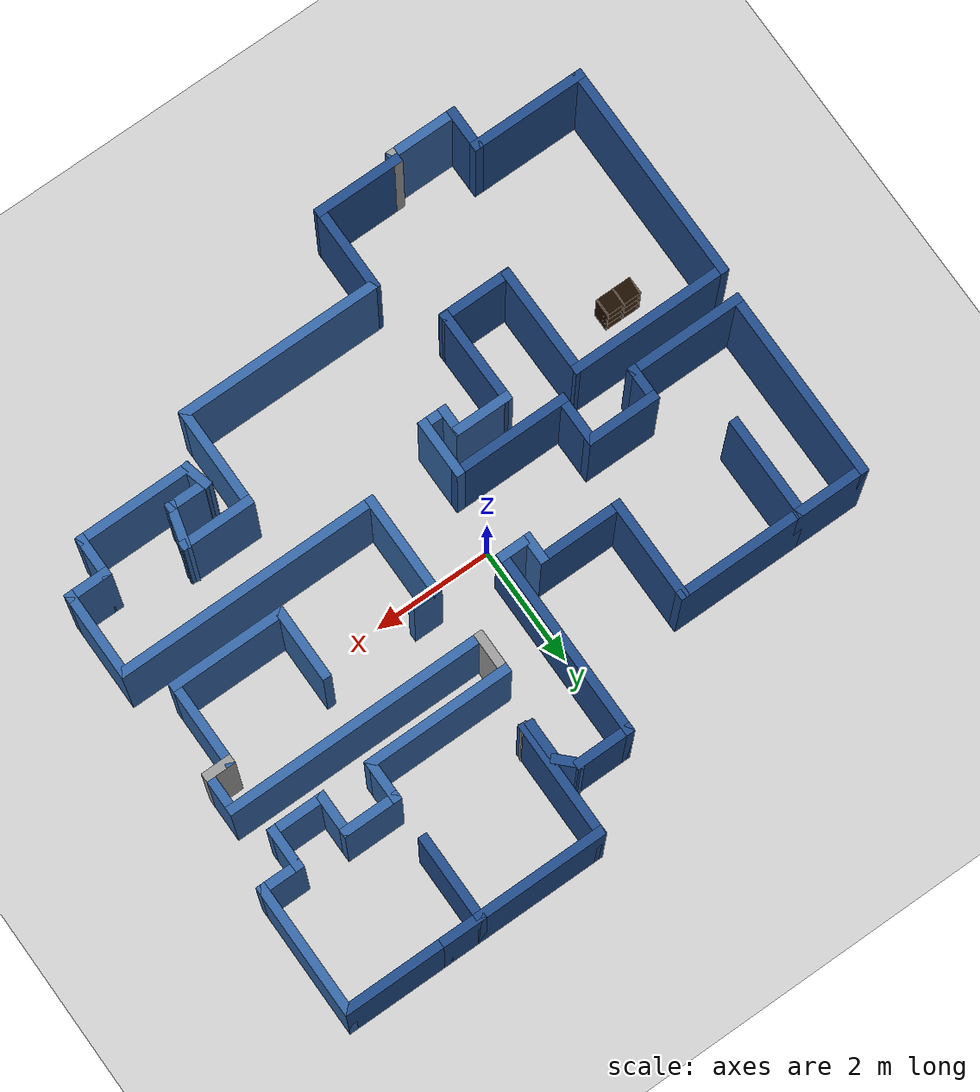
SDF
<sdf version="1.6">
 <world name="default">
  <model name="ground_plane">
   <static>1</static>
   <link name="link">
    <collision name="collision">
     <geometry><plane><normal>0 0 1</normal><size>100 100</size></plane></geometry>
     <surface><friction><ode><mu>100</mu><mu2>50</mu2></ode></friction></surface>
    </collision>
    <visual name="visual">
     <cast_shadows>0</cast_shadows>
     <geometry><plane><normal>0 0 1</normal><size>100 100</size></plane></geometry>
     <material>
      <script><uri>file://media/materials/scripts/gazebo.material</uri><name>Gazebo/Grey</name></script>
     </material>
    </visual>
   </link>
  </model>
  <model name="map_5">
   <pose>0.37936 -0.31798 0 0 -0 0</pose>
   <link name="Wall_0">
    <collision name="Wall_0_Collision">
     <geometry><box><size>1.5 0.15 2.5</size></box></geometry>
     <pose>0 0 1.25 0 -0 0</pose>
    </collision>
    <visual name="Wall_0_Visual">
     <pose>0 0 1.25 0 -0 0</pose>
     <geometry><box><size>1.5 0.15 2.5</size></box></geometry>
     <material>
      <script><uri>file://media/materials/scripts/gazebo.material</uri><name>Gazebo/Grey</name></script>
      <ambient>0.12549 0.290196 0.529412 1</ambient>
     </material>
     <meta><layer>0</layer></meta>
    </visual>
    <pose>-1.72204 -4.86332 0 0 -0 3.14159</pose>
   </link>
   <link name="Wall_1">
    <collision name="Wall_1_Collision">
     <geometry><box><size>0.25 0.15 2.5</size></box></geometry>
     <pose>0 0 1.25 0 -0 0</pose>
    </collision>
    <visual name="Wall_1_Visual">
     <pose>0 0 1.25 0 -0 0</pose>
     <geometry><box><size>0.25 0.15 2.5</size></box></geometry>
     <material>
      <script><uri>file://media/materials/scripts/gazebo.material</uri><name>Gazebo/Grey</name></script>
      <ambient>1 1 1 1</ambient>
     </material>
     <meta><layer>0</layer></meta>
    </visual>
    <pose>-2.39704 -4.91331 0 0 -0 -1.5708</pose>
   </link>
   <link name="Wall_10">
    <collision name="Wall_10_Collision">
     <geometry><box><size>1 0.15 2.5</size></box></geometry>
     <pose>0 0 1.25 0 -0 0</pose>
    </collision>
    <visual name="Wall_10_Visual">
     <pose>0 0 1.25 0 -0 0</pose>
     <geometry><box><size>1 0.15 2.5</size></box></geometry>
     <material>
      <script><uri>file://media/materials/scripts/gazebo.material</uri><name>Gazebo/Grey</name></script>
      <ambient>0.203922 0.396078 0.643137 1</ambient>
     </material>
     <meta><layer>0</layer></meta>
    </visual>
    <pose>-1.22204 -1.01331 0 0 -0 0</pose>
   </link>
   <link name="Wall_11">
    <collision name="Wall_11_Collision">
     <geometry><box><size>0.5 0.15 2.5</size></box></geometry>
     <pose>0 0 1.25 0 -0 0</pose>
    </collision>
    <visual name="Wall_11_Visual">
     <pose>0 0 1.25 0 -0 0</pose>
     <geometry><box><size>0.5 0.15 2.5</size></box></geometry>
     <material>
      <script><uri>file://media/materials/scripts/gazebo.material</uri><name>Gazebo/Grey</name></script>
      <ambient>0.203922 0.396078 0.643137 1</ambient>
     </material>
     <meta><layer>0</layer></meta>
    </visual>
    <pose>-0.79704 -1.18832 0 0 -0 -1.5708</pose>
   </link>
   <link name="Wall_12">
    <collision name="Wall_12_Collision">
     <geometry><box><size>0.5 0.15 2.5</size></box></geometry>
     <pose>0 0 1.25 0 -0 0</pose>
    </collision>
    <visual name="Wall_12_Visual">
     <pose>0 0 1.25 0 -0 0</pose>
     <geometry><box><size>0.5 0.15 2.5</size></box></geometry>
     <material>
      <script><uri>file://media/materials/scripts/gazebo.material</uri><name>Gazebo/Grey</name></script>
      <ambient>0.203922 0.396078 0.643137 1</ambient>
     </material>
     <meta><layer>0</layer></meta>
    </visual>
    <pose>-0.62204 -1.36332 0 0 -0 0</pose>
   </link>
   <link name="Wall_13">
    <collision name="Wall_13_Collision">
     <geometry><box><size>1 0.15 2.5</size></box></geometry>
     <pose>0 0 1.25 0 -0 0</pose>
    </collision>
    <visual name="Wall_13_Visual">
     <pose>0 0 1.25 0 -0 0</pose>
     <geometry><box><size>1 0.15 2.5</size></box></geometry>
     <material>
      <script><uri>file://media/materials/scripts/gazebo.material</uri><name>Gazebo/Grey</name></script>
      <ambient>0.203922 0.396078 0.643137 1</ambient>
     </material>
     <meta><layer>0</layer></meta>
    </visual>
    <pose>-0.44704 -0.938315 0 0 -0 1.5708</pose>
   </link>
   <link name="Wall_14">
    <collision name="Wall_14_Collision">
     <geometry><box><size>2 0.15 2.5</size></box></geometry>
     <pose>0 0 1.25 0 -0 0</pose>
    </collision>
    <visual name="Wall_14_Visual">
     <pose>0 0 1.25 0 -0 0</pose>
     <geometry><box><size>2 0.15 2.5</size></box></geometry>
     <material>
      <script><uri>file://media/materials/scripts/gazebo.material</uri><name>Gazebo/Grey</name></script>
      <ambient>0.12549 0.290196 0.529412 1</ambient>
     </material>
     <meta><layer>0</layer></meta>
    </visual>
    <pose>-1.37204 -0.513315 0 0 -0 3.14159</pose>
   </link>
   <link name="Wall_15">
    <collision name="Wall_15_Collision">
     <geometry><box><size>0.847049 0.15 2.5</size></box></geometry>
     <pose>0 0 1.25 0 -0 0</pose>
    </collision>
    <visual name="Wall_15_Visual">
     <pose>0 0 1.25 0 -0 0</pose>
     <geometry><box><size>0.847049 0.15 2.5</size></box></geometry>
     <material>
      <script><uri>file://media/materials/scripts/gazebo.material</uri><name>Gazebo/Grey</name></script>
      <ambient>0.12549 0.290196 0.529412 1</ambient>
     </material>
     <meta><layer>0</layer></meta>
    </visual>
    <pose>-2.29704 -0.164791 0 0 -0 1.5708</pose>
   </link>
   <link name="Wall_16">
    <collision name="Wall_16_Collision">
     <geometry><box><size>1.25 0.15 2.5</size></box></geometry>
     <pose>0 0 1.25 0 -0 0</pose>
    </collision>
    <visual name="Wall_16_Visual">
     <pose>0 0 1.25 0 -0 0</pose>
     <geometry><box><size>1.25 0.15 2.5</size></box></geometry>
     <material>
      <script><uri>file://media/materials/scripts/gazebo.material</uri><name>Gazebo/Grey</name></script>
      <ambient>0.12549 0.290196 0.529412 1</ambient>
     </material>
     <meta><layer>0</layer></meta>
    </visual>
    <pose>-2.84704 0.214324 0 0 -0 3.14159</pose>
   </link>
   <link name="Wall_17">
    <collision name="Wall_17_Collision">
     <geometry><box><size>0.597049 0.15 2.5</size></box></geometry>
     <pose>0 0 1.25 0 -0 0</pose>
    </collision>
    <visual name="Wall_17_Visual">
     <pose>0 0 1.25 0 -0 0</pose>
     <geometry><box><size>0.597049 0.15 2.5</size></box></geometry>
     <material>
      <script><uri>file://media/materials/scripts/gazebo.material</uri><name>Gazebo/Grey</name></script>
      <ambient>0.12549 0.290196 0.529412 1</ambient>
     </material>
     <meta><layer>0</layer></meta>
    </visual>
    <pose>-3.39704 -0.039791 0 0 -0 -1.5708</pose>
   </link>
   <link name="Wall_18">
    <collision name="Wall_18_Collision">
     <geometry><box><size>2 0.15 2.5</size></box></geometry>
     <pose>0 0 1.25 0 -0 0</pose>
    </collision>
    <visual name="Wall_18_Visual">
     <pose>0 0 1.25 0 -0 0</pose>
     <geometry><box><size>2 0.15 2.5</size></box></geometry>
     <material>
      <script><uri>file://media/materials/scripts/gazebo.material</uri><name>Gazebo/Grey</name></script>
      <ambient>0.12549 0.290196 0.529412 1</ambient>
     </material>
     <meta><layer>0</layer></meta>
    </visual>
    <pose>-4.32204 -0.263315 0 0 -0 3.14159</pose>
   </link>
   <link name="Wall_19">
    <collision name="Wall_19_Collision">
     <geometry><box><size>3.25 0.15 2.5</size></box></geometry>
     <pose>0 0 1.25 0 -0 0</pose>
    </collision>
    <visual name="Wall_19_Visual">
     <pose>0 0 1.25 0 -0 0</pose>
     <geometry><box><size>3.25 0.15 2.5</size></box></geometry>
     <material>
      <script><uri>file://media/materials/scripts/gazebo.material</uri><name>Gazebo/Grey</name></script>
      <ambient>0.12549 0.290196 0.529412 1</ambient>
     </material>
     <meta><layer>0</layer></meta>
    </visual>
    <pose>-5.24704 1.28669 0 0 -0 1.5708</pose>
   </link>
   <link name="Wall_2">
    <collision name="Wall_2_Collision">
     <geometry><box><size>1.25 0.15 2.5</size></box></geometry>
     <pose>0 0 1.25 0 -0 0</pose>
    </collision>
    <visual name="Wall_2_Visual">
     <pose>0 0 1.25 0 -0 0</pose>
     <geometry><box><size>1.25 0.15 2.5</size></box></geometry>
     <material>
      <script><uri>file://media/materials/scripts/gazebo.material</uri><name>Gazebo/Grey</name></script>
      <ambient>0.203922 0.396078 0.643137 1</ambient>
     </material>
     <meta><layer>0</layer></meta>
    </visual>
    <pose>-2.94704 -4.96331 0 0 -0 3.14159</pose>
   </link>
   <link name="Wall_20">
    <collision name="Wall_20_Collision">
     <geometry><box><size>1.27531 0.15 2.5</size></box></geometry>
     <pose>0 0 1.25 0 -0 0</pose>
    </collision>
    <visual name="Wall_20_Visual">
     <pose>0 0 1.25 0 -0 0</pose>
     <geometry><box><size>1.27531 0.15 2.5</size></box></geometry>
     <material>
      <script><uri>file://media/materials/scripts/gazebo.material</uri><name>Gazebo/Grey</name></script>
      <ambient>0.12549 0.290196 0.529412 1</ambient>
     </material>
     <meta><layer>0</layer></meta>
    </visual>
    <pose>-4.68438 2.83669 0 0 -0 0</pose>
   </link>
   <link name="Wall_21">
    <collision name="Wall_21_Collision">
     <geometry><box><size>1.75 0.15 2.5</size></box></geometry>
     <pose>0 0 1.25 0 -0 0</pose>
    </collision>
    <visual name="Wall_21_Visual">
     <pose>0 0 1.25 0 -0 0</pose>
     <geometry><box><size>1.75 0.15 2.5</size></box></geometry>
     <material>
      <script><uri>file://media/materials/scripts/gazebo.material</uri><name>Gazebo/Grey</name></script>
      <ambient>0.12549 0.290196 0.529412 1</ambient>
     </material>
     <meta><layer>0</layer></meta>
    </visual>
    <pose>-4.15232 2.03668 0 0 -0 -1.5708</pose>
   </link>
   <link name="Wall_23">
    <collision name="Wall_23_Collision">
     <geometry><box><size>2.22469 0.15 2.5</size></box></geometry>
     <pose>0 0 1.25 0 -0 0</pose>
    </collision>
    <visual name="Wall_23_Visual">
     <pose>0 0 1.25 0 -0 0</pose>
     <geometry><box><size>2.22469 0.15 2.5</size></box></geometry>
     <material>
      <script><uri>file://media/materials/scripts/gazebo.material</uri><name>Gazebo/Grey</name></script>
      <ambient>0.12549 0.290196 0.529412 1</ambient>
     </material>
     <meta><layer>0</layer></meta>
    </visual>
    <pose>-3.08438 2.83669 0 0 -0 0</pose>
   </link>
   <link name="Wall_27">
    <collision name="Wall_27_Collision">
     <geometry><box><size>1.75 0.15 2.5</size></box></geometry>
     <pose>0 0 1.25 0 -0 0</pose>
    </collision>
    <visual name="Wall_27_Visual">
     <pose>0 0 1.25 0 -0 0</pose>
     <geometry><box><size>1.75 0.15 2.5</size></box></geometry>
     <material>
      <script><uri>file://media/materials/scripts/gazebo.material</uri><name>Gazebo/Grey</name></script>
      <ambient>0.12549 0.290196 0.529412 1</ambient>
     </material>
     <meta><layer>0</layer></meta>
    </visual>
    <pose>-2.04704 2.03668 0 0 -0 -1.5708</pose>
   </link>
   <link name="Wall_28">
    <collision name="Wall_28_Collision">
     <geometry><box><size>1.5 0.15 2.5</size></box></geometry>
     <pose>0 0 1.25 0 -0 0</pose>
    </collision>
    <visual name="Wall_28_Visual">
     <pose>0 0 1.25 0 -0 0</pose>
     <geometry><box><size>1.5 0.15 2.5</size></box></geometry>
     <material>
      <script><uri>file://media/materials/scripts/gazebo.material</uri><name>Gazebo/Grey</name></script>
      <ambient>0.12549 0.290196 0.529412 1</ambient>
     </material>
     <meta><layer>0</layer></meta>
    </visual>
    <pose>-1.37204 1.23669 0 0 -0 0</pose>
   </link>
   <link name="Wall_29">
    <collision name="Wall_29_Collision">
     <geometry><box><size>0.5 0.15 2.5</size></box></geometry>
     <pose>0 0 1.25 0 -0 0</pose>
    </collision>
    <visual name="Wall_29_Visual">
     <pose>0 0 1.25 0 -0 0</pose>
     <geometry><box><size>0.5 0.15 2.5</size></box></geometry>
     <material>
      <script><uri>file://media/materials/scripts/gazebo.material</uri><name>Gazebo/Grey</name></script>
      <ambient>0.203922 0.396078 0.643137 1</ambient>
     </material>
     <meta><layer>0</layer></meta>
    </visual>
    <pose>-0.69704 1.06168 0 0 -0 -1.5708</pose>
   </link>
   <link name="Wall_3">
    <collision name="Wall_3_Collision">
     <geometry><box><size>0.75 0.15 2.5</size></box></geometry>
     <pose>0 0 1.25 0 -0 0</pose>
    </collision>
    <visual name="Wall_3_Visual">
     <pose>0 0 1.25 0 -0 0</pose>
     <geometry><box><size>0.75 0.15 2.5</size></box></geometry>
     <material>
      <script><uri>file://media/materials/scripts/gazebo.material</uri><name>Gazebo/Grey</name></script>
      <ambient>0.12549 0.290196 0.529412 1</ambient>
     </material>
     <meta><layer>0</layer></meta>
    </visual>
    <pose>-3.49704 -4.66331 0 0 -0 1.5708</pose>
   </link>
   <link name="Wall_30">
    <collision name="Wall_30_Collision">
     <geometry><box><size>0.25 0.15 2.5</size></box></geometry>
     <pose>0 0 1.25 0 -0 0</pose>
    </collision>
    <visual name="Wall_30_Visual">
     <pose>0 0 1.25 0 -0 0</pose>
     <geometry><box><size>0.25 0.15 2.5</size></box></geometry>
     <material>
      <script><uri>file://media/materials/scripts/gazebo.material</uri><name>Gazebo/Grey</name></script>
      <ambient>0.203922 0.396078 0.643137 1</ambient>
     </material>
     <meta><layer>0</layer></meta>
    </visual>
    <pose>-0.64704 0.886685 0 0 -0 0</pose>
   </link>
   <link name="Wall_31">
    <collision name="Wall_31_Collision">
     <geometry><box><size>0.5 0.15 2.5</size></box></geometry>
     <pose>0 0 1.25 0 -0 0</pose>
    </collision>
    <visual name="Wall_31_Visual">
     <pose>0 0 1.25 0 -0 0</pose>
     <geometry><box><size>0.5 0.15 2.5</size></box></geometry>
     <material>
      <script><uri>file://media/materials/scripts/gazebo.material</uri><name>Gazebo/Grey</name></script>
      <ambient>0.203922 0.396078 0.643137 1</ambient>
     </material>
     <meta><layer>0</layer></meta>
    </visual>
    <pose>-0.42204 0.886685 0 0 -0 0</pose>
   </link>
   <link name="Wall_32">
    <collision name="Wall_32_Collision">
     <geometry><box><size>3.25 0.15 2.5</size></box></geometry>
     <pose>0 0 1.25 0 -0 0</pose>
    </collision>
    <visual name="Wall_32_Visual">
     <pose>0 0 1.25 0 -0 0</pose>
     <geometry><box><size>3.25 0.15 2.5</size></box></geometry>
     <material>
      <script><uri>file://media/materials/scripts/gazebo.material</uri><name>Gazebo/Grey</name></script>
      <ambient>0.12549 0.290196 0.529412 1</ambient>
     </material>
     <meta><layer>0</layer></meta>
    </visual>
    <pose>-0.24704 2.43669 0 0 -0 1.5708</pose>
   </link>
   <link name="Wall_33">
    <collision name="Wall_33_Collision">
     <geometry><box><size>1 0.15 2.5</size></box></geometry>
     <pose>0 0 1.25 0 -0 0</pose>
    </collision>
    <visual name="Wall_33_Visual">
     <pose>0 0 1.25 0 -0 0</pose>
     <geometry><box><size>1 0.15 2.5</size></box></geometry>
     <material>
      <script><uri>file://media/materials/scripts/gazebo.material</uri><name>Gazebo/Grey</name></script>
      <ambient>0.12549 0.290196 0.529412 1</ambient>
     </material>
     <meta><layer>0</layer></meta>
    </visual>
    <pose>0.17796 3.98669 0 0 -0 0</pose>
   </link>
   <link name="Wall_34">
    <collision name="Wall_34_Collision">
     <geometry><box><size>0.5 0.15 2.5</size></box></geometry>
     <pose>0 0 1.25 0 -0 0</pose>
    </collision>
    <visual name="Wall_34_Visual">
     <pose>0 0 1.25 0 -0 0</pose>
     <geometry><box><size>0.5 0.15 2.5</size></box></geometry>
     <material>
      <script><uri>file://media/materials/scripts/gazebo.material</uri><name>Gazebo/Grey</name></script>
      <ambient>0.12549 0.290196 0.529412 1</ambient>
     </material>
     <meta><layer>0</layer></meta>
    </visual>
    <pose>0.726704 3.86294 0 0 -0 -0.785398</pose>
   </link>
   <link name="Wall_35">
    <collision name="Wall_35_Collision">
     <geometry><box><size>0.75 0.15 2.5</size></box></geometry>
     <pose>0 0 1.25 0 -0 0</pose>
    </collision>
    <visual name="Wall_35_Visual">
     <pose>0 0 1.25 0 -0 0</pose>
     <geometry><box><size>0.75 0.15 2.5</size></box></geometry>
     <material>
      <script><uri>file://media/materials/scripts/gazebo.material</uri><name>Gazebo/Grey</name></script>
      <ambient>0.12549 0.290196 0.529412 1</ambient>
     </material>
     <meta><layer>0</layer></meta>
    </visual>
    <pose>0.850447 3.4392 0 0 -0 -1.5708</pose>
   </link>
   <link name="Wall_36">
    <collision name="Wall_36_Collision">
     <geometry><box><size>0.25 0.15 2.5</size></box></geometry>
     <pose>0 0 1.25 0 -0 0</pose>
    </collision>
    <visual name="Wall_36_Visual">
     <pose>0 0 1.25 0 -0 0</pose>
     <geometry><box><size>0.25 0.15 2.5</size></box></geometry>
     <material>
      <script><uri>file://media/materials/scripts/gazebo.material</uri><name>Gazebo/Grey</name></script>
      <ambient>1 1 1 1</ambient>
     </material>
     <meta><layer>0</layer></meta>
    </visual>
    <pose>0.898744 3.12626 0 0 -0 -0.261799</pose>
   </link>
   <link name="Wall_37">
    <collision name="Wall_37_Collision">
     <geometry><box><size>2 0.15 2.5</size></box></geometry>
     <pose>0 0 1.25 0 -0 0</pose>
    </collision>
    <visual name="Wall_37_Visual">
     <pose>0 0 1.25 0 -0 0</pose>
     <geometry><box><size>2 0.15 2.5</size></box></geometry>
     <material>
      <script><uri>file://media/materials/scripts/gazebo.material</uri><name>Gazebo/Grey</name></script>
      <ambient>0.12549 0.290196 0.529412 1</ambient>
     </material>
     <meta><layer>0</layer></meta>
    </visual>
    <pose>0.94704 4.03831 0 0 -0 1.5708</pose>
   </link>
   <link name="Wall_38">
    <collision name="Wall_38_Collision">
     <geometry><box><size>2.25 0.15 2.5</size></box></geometry>
     <pose>0 0 1.25 0 -0 0</pose>
    </collision>
    <visual name="Wall_38_Visual">
     <pose>0 0 1.25 0 -0 0</pose>
     <geometry><box><size>2.25 0.15 2.5</size></box></geometry>
     <material>
      <script><uri>file://media/materials/scripts/gazebo.material</uri><name>Gazebo/Grey</name></script>
      <ambient>0.12549 0.290196 0.529412 1</ambient>
     </material>
     <meta><layer>0</layer></meta>
    </visual>
    <pose>1.99704 4.96331 0 0 -0 0</pose>
   </link>
   <link name="Wall_39">
    <collision name="Wall_39_Collision">
     <geometry><box><size>1.5 0.15 2.5</size></box></geometry>
     <pose>0 0 1.25 0 -0 0</pose>
    </collision>
    <visual name="Wall_39_Visual">
     <pose>0 0 1.25 0 -0 0</pose>
     <geometry><box><size>1.5 0.15 2.5</size></box></geometry>
     <material>
      <script><uri>file://media/materials/scripts/gazebo.material</uri><name>Gazebo/Grey</name></script>
      <ambient>0.12549 0.290196 0.529412 1</ambient>
     </material>
     <meta><layer>0</layer></meta>
    </visual>
    <pose>3.04704 4.28831 0 0 -0 -1.5708</pose>
   </link>
   <link name="Wall_4">
    <collision name="Wall_4_Collision">
     <geometry><box><size>2 0.15 2.5</size></box></geometry>
     <pose>0 0 1.25 0 -0 0</pose>
    </collision>
    <visual name="Wall_4_Visual">
     <pose>0 0 1.25 0 -0 0</pose>
     <geometry><box><size>2 0.15 2.5</size></box></geometry>
     <material>
      <script><uri>file://media/materials/scripts/gazebo.material</uri><name>Gazebo/Grey</name></script>
      <ambient>0.12549 0.290196 0.529412 1</ambient>
     </material>
     <meta><layer>0</layer></meta>
    </visual>
    <pose>-4.42204 -4.36332 0 0 -0 3.14159</pose>
   </link>
   <link name="Wall_41">
    <collision name="Wall_41_Collision">
     <geometry><box><size>0.75 0.15 2.5</size></box></geometry>
     <pose>0 0 1.25 0 -0 0</pose>
    </collision>
    <visual name="Wall_41_Visual">
     <pose>0 0 1.25 0 -0 0</pose>
     <geometry><box><size>0.75 0.15 2.5</size></box></geometry>
     <material>
      <script><uri>file://media/materials/scripts/gazebo.material</uri><name>Gazebo/Grey</name></script>
      <ambient>0.12549 0.290196 0.529412 1</ambient>
     </material>
     <meta><layer>0</layer></meta>
    </visual>
    <pose>3.34704 4.96331 0 0 -0 0</pose>
   </link>
   <link name="Wall_46">
    <collision name="Wall_46_Collision">
     <geometry><box><size>2.25 0.15 2.5</size></box></geometry>
     <pose>0 0 1.25 0 -0 0</pose>
    </collision>
    <visual name="Wall_46_Visual">
     <pose>0 0 1.25 0 -0 0</pose>
     <geometry><box><size>2.25 0.15 2.5</size></box></geometry>
     <material>
      <script><uri>file://media/materials/scripts/gazebo.material</uri><name>Gazebo/Grey</name></script>
      <ambient>0.203922 0.396078 0.643137 1</ambient>
     </material>
     <meta><layer>0</layer></meta>
    </visual>
    <pose>5.34704 3.91331 0 0 -0 -1.5708</pose>
   </link>
   <link name="Wall_47">
    <collision name="Wall_47_Collision">
     <geometry><box><size>0.75 0.15 2.5</size></box></geometry>
     <pose>0 0 1.25 0 -0 0</pose>
    </collision>
    <visual name="Wall_47_Visual">
     <pose>0 0 1.25 0 -0 0</pose>
     <geometry><box><size>0.75 0.15 2.5</size></box></geometry>
     <material>
      <script><uri>file://media/materials/scripts/gazebo.material</uri><name>Gazebo/Grey</name></script>
      <ambient>0.203922 0.396078 0.643137 1</ambient>
     </material>
     <meta><layer>0</layer></meta>
    </visual>
    <pose>5.04704 2.86332 0 0 -0 3.14159</pose>
   </link>
   <link name="Wall_48">
    <collision name="Wall_48_Collision">
     <geometry><box><size>0.75 0.15 2.5</size></box></geometry>
     <pose>0 0 1.25 0 -0 0</pose>
    </collision>
    <visual name="Wall_48_Visual">
     <pose>0 0 1.25 0 -0 0</pose>
     <geometry><box><size>0.75 0.15 2.5</size></box></geometry>
     <material>
      <script><uri>file://media/materials/scripts/gazebo.material</uri><name>Gazebo/Grey</name></script>
      <ambient>0.203922 0.396078 0.643137 1</ambient>
     </material>
     <meta><layer>0</layer></meta>
    </visual>
    <pose>4.74704 2.56331 0 0 -0 -1.5708</pose>
   </link>
   <link name="Wall_49">
    <collision name="Wall_49_Collision">
     <geometry><box><size>1 0.15 2.5</size></box></geometry>
     <pose>0 0 1.25 0 -0 0</pose>
    </collision>
    <visual name="Wall_49_Visual">
     <pose>0 0 1.25 0 -0 0</pose>
     <geometry><box><size>1 0.15 2.5</size></box></geometry>
     <material>
      <script><uri>file://media/materials/scripts/gazebo.material</uri><name>Gazebo/Grey</name></script>
      <ambient>0.203922 0.396078 0.643137 1</ambient>
     </material>
     <meta><layer>0</layer></meta>
    </visual>
    <pose>4.32204 2.26331 0 0 -0 3.14159</pose>
   </link>
   <link name="Wall_5">
    <collision name="Wall_5_Collision">
     <geometry><box><size>3.75 0.15 2.5</size></box></geometry>
     <pose>0 0 1.25 0 -0 0</pose>
    </collision>
    <visual name="Wall_5_Visual">
     <pose>0 0 1.25 0 -0 0</pose>
     <geometry><box><size>3.75 0.15 2.5</size></box></geometry>
     <material>
      <script><uri>file://media/materials/scripts/gazebo.material</uri><name>Gazebo/Grey</name></script>
      <ambient>0.12549 0.290196 0.529412 1</ambient>
     </material>
     <meta><layer>0</layer></meta>
    </visual>
    <pose>-5.34704 -2.56331 0 0 -0 1.5708</pose>
   </link>
   <link name="Wall_50">
    <collision name="Wall_50_Collision">
     <geometry><box><size>0.75 0.15 2.5</size></box></geometry>
     <pose>0 0 1.25 0 -0 0</pose>
    </collision>
    <visual name="Wall_50_Visual">
     <pose>0 0 1.25 0 -0 0</pose>
     <geometry><box><size>0.75 0.15 2.5</size></box></geometry>
     <material>
      <script><uri>file://media/materials/scripts/gazebo.material</uri><name>Gazebo/Grey</name></script>
      <ambient>0.203922 0.396078 0.643137 1</ambient>
     </material>
     <meta><layer>0</layer></meta>
    </visual>
    <pose>3.89704 2.56331 0 0 -0 1.5708</pose>
   </link>
   <link name="Wall_51">
    <collision name="Wall_51_Collision">
     <geometry><box><size>1 0.15 2.5</size></box></geometry>
     <pose>0 0 1.25 0 -0 0</pose>
    </collision>
    <visual name="Wall_51_Visual">
     <pose>0 0 1.25 0 -0 0</pose>
     <geometry><box><size>1 0.15 2.5</size></box></geometry>
     <material>
      <script><uri>file://media/materials/scripts/gazebo.material</uri><name>Gazebo/Grey</name></script>
      <ambient>0.203922 0.396078 0.643137 1</ambient>
     </material>
     <meta><layer>0</layer></meta>
    </visual>
    <pose>3.47204 2.86332 0 0 -0 3.14159</pose>
   </link>
   <link name="Wall_52">
    <collision name="Wall_52_Collision">
     <geometry><box><size>0.75 0.15 2.5</size></box></geometry>
     <pose>0 0 1.25 0 -0 0</pose>
    </collision>
    <visual name="Wall_52_Visual">
     <pose>0 0 1.25 0 -0 0</pose>
     <geometry><box><size>0.75 0.15 2.5</size></box></geometry>
     <material>
      <script><uri>file://media/materials/scripts/gazebo.material</uri><name>Gazebo/Grey</name></script>
      <ambient>0.203922 0.396078 0.643137 1</ambient>
     </material>
     <meta><layer>0</layer></meta>
    </visual>
    <pose>3.04704 2.56331 0 0 -0 -1.5708</pose>
   </link>
   <link name="Wall_53">
    <collision name="Wall_53_Collision">
     <geometry><box><size>2.5 0.15 2.5</size></box></geometry>
     <pose>0 0 1.25 0 -0 0</pose>
    </collision>
    <visual name="Wall_53_Visual">
     <pose>0 0 1.25 0 -0 0</pose>
     <geometry><box><size>2.5 0.15 2.5</size></box></geometry>
     <material>
      <script><uri>file://media/materials/scripts/gazebo.material</uri><name>Gazebo/Grey</name></script>
      <ambient>0.203922 0.396078 0.643137 1</ambient>
     </material>
     <meta><layer>0</layer></meta>
    </visual>
    <pose>1.87204 2.26331 0 0 -0 3.14159</pose>
   </link>
   <link name="Wall_54">
    <collision name="Wall_54_Collision">
     <geometry><box><size>0.75 0.15 2.5</size></box></geometry>
     <pose>0 0 1.25 0 -0 0</pose>
    </collision>
    <visual name="Wall_54_Visual">
     <pose>0 0 1.25 0 -0 0</pose>
     <geometry><box><size>0.75 0.15 2.5</size></box></geometry>
     <material>
      <script><uri>file://media/materials/scripts/gazebo.material</uri><name>Gazebo/Grey</name></script>
      <ambient>1 1 1 1</ambient>
     </material>
     <meta><layer>0</layer></meta>
    </visual>
    <pose>0.69704 1.96331 0 0 -0 -1.5708</pose>
   </link>
   <link name="Wall_55">
    <collision name="Wall_55_Collision">
     <geometry><box><size>4.5 0.15 2.5</size></box></geometry>
     <pose>0 0 1.25 0 -0 0</pose>
    </collision>
    <visual name="Wall_55_Visual">
     <pose>0 0 1.25 0 -0 0</pose>
     <geometry><box><size>4.5 0.15 2.5</size></box></geometry>
     <material>
      <script><uri>file://media/materials/scripts/gazebo.material</uri><name>Gazebo/Grey</name></script>
      <ambient>0.203922 0.396078 0.643137 1</ambient>
     </material>
     <meta><layer>0</layer></meta>
    </visual>
    <pose>2.87204 1.66332 0 0 -0 0</pose>
   </link>
   <link name="Wall_56">
    <collision name="Wall_56_Collision">
     <geometry><box><size>0.75 0.15 2.5</size></box></geometry>
     <pose>0 0 1.25 0 -0 0</pose>
    </collision>
    <visual name="Wall_56_Visual">
     <pose>0 0 1.25 0 -0 0</pose>
     <geometry><box><size>0.75 0.15 2.5</size></box></geometry>
     <material>
      <script><uri>file://media/materials/scripts/gazebo.material</uri><name>Gazebo/Grey</name></script>
      <ambient>0.203922 0.396078 0.643137 1</ambient>
     </material>
     <meta><layer>0</layer></meta>
    </visual>
    <pose>5.04704 1.36332 0 0 -0 -1.5708</pose>
   </link>
   <link name="Wall_57">
    <collision name="Wall_57_Collision">
     <geometry><box><size>0.5 0.15 2.5</size></box></geometry>
     <pose>0 0 1.25 0 -0 0</pose>
    </collision>
    <visual name="Wall_57_Visual">
     <pose>0 0 1.25 0 -0 0</pose>
     <geometry><box><size>0.5 0.15 2.5</size></box></geometry>
     <material>
      <script><uri>file://media/materials/scripts/gazebo.material</uri><name>Gazebo/Grey</name></script>
      <ambient>1 1 1 1</ambient>
     </material>
     <meta><layer>0</layer></meta>
    </visual>
    <pose>4.87204 1.06332 0 0 -0 3.14159</pose>
   </link>
   <link name="Wall_58">
    <collision name="Wall_58_Collision">
     <geometry><box><size>1.5 0.15 2.5</size></box></geometry>
     <pose>0 0 1.25 0 -0 0</pose>
    </collision>
    <visual name="Wall_58_Visual">
     <pose>0 0 1.25 0 -0 0</pose>
     <geometry><box><size>1.5 0.15 2.5</size></box></geometry>
     <material>
      <script><uri>file://media/materials/scripts/gazebo.material</uri><name>Gazebo/Grey</name></script>
      <ambient>0.203922 0.396078 0.643137 1</ambient>
     </material>
     <meta><layer>0</layer></meta>
    </visual>
    <pose>4.69704 0.388315 0 0 -0 -1.5708</pose>
   </link>
   <link name="Wall_59">
    <collision name="Wall_59_Collision">
     <geometry><box><size>2 0.15 2.5</size></box></geometry>
     <pose>0 0 1.25 0 -0 0</pose>
    </collision>
    <visual name="Wall_59_Visual">
     <pose>0 0 1.25 0 -0 0</pose>
     <geometry><box><size>2 0.15 2.5</size></box></geometry>
     <material>
      <script><uri>file://media/materials/scripts/gazebo.material</uri><name>Gazebo/Grey</name></script>
      <ambient>0.203922 0.396078 0.643137 1</ambient>
     </material>
     <meta><layer>0</layer></meta>
    </visual>
    <pose>3.77204 -0.286685 0 0 -0 3.14159</pose>
   </link>
   <link name="Wall_6">
    <collision name="Wall_6_Collision">
     <geometry><box><size>2.75 0.15 2.5</size></box></geometry>
     <pose>0 0 1.25 0 -0 0</pose>
    </collision>
    <visual name="Wall_6_Visual">
     <pose>0 0 1.25 0 -0 0</pose>
     <geometry><box><size>2.75 0.15 2.5</size></box></geometry>
     <material>
      <script><uri>file://media/materials/scripts/gazebo.material</uri><name>Gazebo/Grey</name></script>
      <ambient>0.12549 0.290196 0.529412 1</ambient>
     </material>
     <meta><layer>0</layer></meta>
    </visual>
    <pose>-4.04704 -0.763315 0 0 -0 0</pose>
   </link>
   <link name="Wall_60">
    <collision name="Wall_60_Collision">
     <geometry><box><size>1.25 0.15 2.5</size></box></geometry>
     <pose>0 0 1.25 0 -0 0</pose>
    </collision>
    <visual name="Wall_60_Visual">
     <pose>0 0 1.25 0 -0 0</pose>
     <geometry><box><size>1.25 0.15 2.5</size></box></geometry>
     <material>
      <script><uri>file://media/materials/scripts/gazebo.material</uri><name>Gazebo/Grey</name></script>
      <ambient>0.203922 0.396078 0.643137 1</ambient>
     </material>
     <meta><layer>0</layer></meta>
    </visual>
    <pose>2.84704 0.263315 0 0 -0 1.5708</pose>
   </link>
   <link name="Wall_64">
    <collision name="Wall_64_Collision">
     <geometry><box><size>0.5 0.15 2.5</size></box></geometry>
     <pose>0 0 1.25 0 -0 0</pose>
    </collision>
    <visual name="Wall_64_Visual">
     <pose>0 0 1.25 0 -0 0</pose>
     <geometry><box><size>0.5 0.15 2.5</size></box></geometry>
     <material>
      <script><uri>file://media/materials/scripts/gazebo.material</uri><name>Gazebo/Grey</name></script>
      <ambient>0.203922 0.396078 0.643137 1</ambient>
     </material>
     <meta><layer>0</layer></meta>
    </visual>
    <pose>1.01362 0.726503 0 0 -0 3.14159</pose>
   </link>
   <link name="Wall_65">
    <collision name="Wall_65_Collision">
     <geometry><box><size>1.75 0.15 2.5</size></box></geometry>
     <pose>0 0 1.25 0 -0 0</pose>
    </collision>
    <visual name="Wall_65_Visual">
     <pose>0 0 1.25 0 -0 0</pose>
     <geometry><box><size>1.75 0.15 2.5</size></box></geometry>
     <material>
      <script><uri>file://media/materials/scripts/gazebo.material</uri><name>Gazebo/Grey</name></script>
      <ambient>0.203922 0.396078 0.643137 1</ambient>
     </material>
     <meta><layer>0</layer></meta>
    </visual>
    <pose>0.838617 -0.073497 0 0 -0 -1.5708</pose>
   </link>
   <link name="Wall_66">
    <collision name="Wall_66_Collision">
     <geometry><box><size>4.5 0.15 2.5</size></box></geometry>
     <pose>0 0 1.25 0 -0 0</pose>
    </collision>
    <visual name="Wall_66_Visual">
     <pose>0 0 1.25 0 -0 0</pose>
     <geometry><box><size>4.5 0.15 2.5</size></box></geometry>
     <material>
      <script><uri>file://media/materials/scripts/gazebo.material</uri><name>Gazebo/Grey</name></script>
      <ambient>0.203922 0.396078 0.643137 1</ambient>
     </material>
     <meta><layer>0</layer></meta>
    </visual>
    <pose>3.01362 -0.873497 0 0 -0 0</pose>
   </link>
   <link name="Wall_67">
    <collision name="Wall_67_Collision">
     <geometry><box><size>1.5 0.15 2.5</size></box></geometry>
     <pose>0 0 1.25 0 -0 0</pose>
    </collision>
    <visual name="Wall_67_Visual">
     <pose>0 0 1.25 0 -0 0</pose>
     <geometry><box><size>1.5 0.15 2.5</size></box></geometry>
     <material>
      <script><uri>file://media/materials/scripts/gazebo.material</uri><name>Gazebo/Grey</name></script>
      <ambient>0.203922 0.396078 0.643137 1</ambient>
     </material>
     <meta><layer>0</layer></meta>
    </visual>
    <pose>5.18862 -1.5485 0 0 -0 -1.5708</pose>
   </link>
   <link name="Wall_68">
    <collision name="Wall_68_Collision">
     <geometry><box><size>0.75 0.15 2.5</size></box></geometry>
     <pose>0 0 1.25 0 -0 0</pose>
    </collision>
    <visual name="Wall_68_Visual">
     <pose>0 0 1.25 0 -0 0</pose>
     <geometry><box><size>0.75 0.15 2.5</size></box></geometry>
     <material>
      <script><uri>file://media/materials/scripts/gazebo.material</uri><name>Gazebo/Grey</name></script>
      <ambient>0.203922 0.396078 0.643137 1</ambient>
     </material>
     <meta><layer>0</layer></meta>
    </visual>
    <pose>4.88862 -2.2235 0 0 -0 3.14159</pose>
   </link>
   <link name="Wall_69">
    <collision name="Wall_69_Collision">
     <geometry><box><size>0.75 0.15 2.5</size></box></geometry>
     <pose>0 0 1.25 0 -0 0</pose>
    </collision>
    <visual name="Wall_69_Visual">
     <pose>0 0 1.25 0 -0 0</pose>
     <geometry><box><size>0.75 0.15 2.5</size></box></geometry>
     <material>
      <script><uri>file://media/materials/scripts/gazebo.material</uri><name>Gazebo/Grey</name></script>
      <ambient>0.203922 0.396078 0.643137 1</ambient>
     </material>
     <meta><layer>0</layer></meta>
    </visual>
    <pose>4.58862 -2.5235 0 0 -0 -1.5708</pose>
   </link>
   <link name="Wall_7">
    <collision name="Wall_7_Collision">
     <geometry><box><size>1.88506 0.15 2.5</size></box></geometry>
     <pose>0 0 1.25 0 -0 0</pose>
    </collision>
    <visual name="Wall_7_Visual">
     <pose>0 0 1.25 0 -0 0</pose>
     <geometry><box><size>1.88506 0.15 2.5</size></box></geometry>
     <material>
      <script><uri>file://media/materials/scripts/gazebo.material</uri><name>Gazebo/Grey</name></script>
      <ambient>0.12549 0.290196 0.529412 1</ambient>
     </material>
     <meta><layer>0</layer></meta>
    </visual>
    <pose>-2.73944 -1.63081 0 0 -0 -1.56203</pose>
   </link>
   <link name="Wall_70">
    <collision name="Wall_70_Collision">
     <geometry><box><size>2 0.15 2.5</size></box></geometry>
     <pose>0 0 1.25 0 -0 0</pose>
    </collision>
    <visual name="Wall_70_Visual">
     <pose>0 0 1.25 0 -0 0</pose>
     <geometry><box><size>2 0.15 2.5</size></box></geometry>
     <material>
      <script><uri>file://media/materials/scripts/gazebo.material</uri><name>Gazebo/Grey</name></script>
      <ambient>0.203922 0.396078 0.643137 1</ambient>
     </material>
     <meta><layer>0</layer></meta>
    </visual>
    <pose>3.66362 -2.8235 0 0 -0 3.14159</pose>
   </link>
   <link name="Wall_71">
    <collision name="Wall_71_Collision">
     <geometry><box><size>0.5 0.15 2.5</size></box></geometry>
     <pose>0 0 1.25 0 -0 0</pose>
    </collision>
    <visual name="Wall_71_Visual">
     <pose>0 0 1.25 0 -0 0</pose>
     <geometry><box><size>0.5 0.15 2.5</size></box></geometry>
     <material>
      <script><uri>file://media/materials/scripts/gazebo.material</uri><name>Gazebo/Grey</name></script>
      <ambient>0.203922 0.396078 0.643137 1</ambient>
     </material>
     <meta><layer>0</layer></meta>
    </visual>
    <pose>2.69332 -2.65446 0 0 -0 1.8326</pose>
   </link>
   <link name="Wall_72">
    <collision name="Wall_72_Collision">
     <geometry><box><size>0.75 0.15 2.5</size></box></geometry>
     <pose>0 0 1.25 0 -0 0</pose>
    </collision>
    <visual name="Wall_72_Visual">
     <pose>0 0 1.25 0 -0 0</pose>
     <geometry><box><size>0.75 0.15 2.5</size></box></geometry>
     <material>
      <script><uri>file://media/materials/scripts/gazebo.material</uri><name>Gazebo/Grey</name></script>
      <ambient>0.203922 0.396078 0.643137 1</ambient>
     </material>
     <meta><layer>0</layer></meta>
    </visual>
    <pose>2.94803 -2.48542 0 0 -0 0</pose>
   </link>
   <link name="Wall_73">
    <collision name="Wall_73_Collision">
     <geometry><box><size>0.75 0.15 2.5</size></box></geometry>
     <pose>0 0 1.25 0 -0 0</pose>
    </collision>
    <visual name="Wall_73_Visual">
     <pose>0 0 1.25 0 -0 0</pose>
     <geometry><box><size>0.75 0.15 2.5</size></box></geometry>
     <material>
      <script><uri>file://media/materials/scripts/gazebo.material</uri><name>Gazebo/Grey</name></script>
      <ambient>0.203922 0.396078 0.643137 1</ambient>
     </material>
     <meta><layer>0</layer></meta>
    </visual>
    <pose>3.32568 -2.19564 0 0 -0 1.309</pose>
   </link>
   <link name="Wall_74">
    <collision name="Wall_74_Collision">
     <geometry><box><size>1.25 0.15 2.5</size></box></geometry>
     <pose>0 0 1.25 0 -0 0</pose>
    </collision>
    <visual name="Wall_74_Visual">
     <pose>0 0 1.25 0 -0 0</pose>
     <geometry><box><size>1.25 0.15 2.5</size></box></geometry>
     <material>
      <script><uri>file://media/materials/scripts/gazebo.material</uri><name>Gazebo/Grey</name></script>
      <ambient>0.203922 0.396078 0.643137 1</ambient>
     </material>
     <meta><layer>0</layer></meta>
    </visual>
    <pose>2.85332 -1.90587 0 0 -0 3.14159</pose>
   </link>
   <link name="Wall_76">
    <collision name="Wall_76_Collision">
     <geometry><box><size>1.85 0.15 2.5</size></box></geometry>
     <pose>0 0 1.25 0 -0 0</pose>
    </collision>
    <visual name="Wall_76_Visual">
     <pose>0 0 1.25 0 -0 0</pose>
     <geometry><box><size>1.85 0.15 2.5</size></box></geometry>
     <material>
      <script><uri>file://media/materials/scripts/gazebo.material</uri><name>Gazebo/Grey</name></script>
      <ambient>0.12549 0.290196 0.529412 1</ambient>
     </material>
     <meta><layer>0</layer></meta>
    </visual>
    <pose>4.49704 4.96331 0 0 -0 0</pose>
   </link>
   <link name="Wall_78">
    <collision name="Wall_78_Collision">
     <geometry><box><size>1.75 0.15 2.5</size></box></geometry>
     <pose>0 0 1.25 0 -0 0</pose>
    </collision>
    <visual name="Wall_78_Visual">
     <pose>0 0 1.25 0 -0 0</pose>
     <geometry><box><size>1.75 0.15 2.5</size></box></geometry>
     <material>
      <script><uri>file://media/materials/scripts/gazebo.material</uri><name>Gazebo/Grey</name></script>
      <ambient>0.203922 0.396078 0.643137 1</ambient>
     </material>
     <meta><layer>0</layer></meta>
    </visual>
    <pose>2.30332 -2.70587 0 0 -0 -1.5708</pose>
   </link>
   <link name="Wall_79">
    <collision name="Wall_79_Collision">
     <geometry><box><size>3.5 0.15 2.5</size></box></geometry>
     <pose>0 0 1.25 0 -0 0</pose>
    </collision>
    <visual name="Wall_79_Visual">
     <pose>0 0 1.25 0 -0 0</pose>
     <geometry><box><size>3.5 0.15 2.5</size></box></geometry>
     <material>
      <script><uri>file://media/materials/scripts/gazebo.material</uri><name>Gazebo/Grey</name></script>
      <ambient>0.203922 0.396078 0.643137 1</ambient>
     </material>
     <meta><layer>0</layer></meta>
    </visual>
    <pose>0.628322 -3.50587 0 0 -0 3.14159</pose>
   </link>
   <link name="Wall_8">
    <collision name="Wall_8_Collision">
     <geometry><box><size>1.25 0.15 2.5</size></box></geometry>
     <pose>0 0 1.25 0 -0 0</pose>
    </collision>
    <visual name="Wall_8_Visual">
     <pose>0 0 1.25 0 -0 0</pose>
     <geometry><box><size>1.25 0.15 2.5</size></box></geometry>
     <material>
      <script><uri>file://media/materials/scripts/gazebo.material</uri><name>Gazebo/Grey</name></script>
      <ambient>0.12549 0.290196 0.529412 1</ambient>
     </material>
     <meta><layer>0</layer></meta>
    </visual>
    <pose>-2.18183 -2.51351 0 0 -0 0</pose>
   </link>
   <link name="Wall_87">
    <collision name="Wall_87_Collision">
     <geometry><box><size>1.50745 0.15 2.5</size></box></geometry>
     <pose>0 0 1.25 0 -0 0</pose>
    </collision>
    <visual name="Wall_87_Visual">
     <pose>0 0 1.25 0 -0 0</pose>
     <geometry><box><size>1.50745 0.15 2.5</size></box></geometry>
     <material>
      <script><uri>file://media/materials/scripts/gazebo.material</uri><name>Gazebo/Grey</name></script>
      <ambient>0.12549 0.290196 0.529412 1</ambient>
     </material>
     <meta><layer>0</layer></meta>
    </visual>
    <pose>-1.04686 -4.18459 0 0 -0 -1.57106</pose>
   </link>
   <link name="Wall_9">
    <collision name="Wall_9_Collision">
     <geometry><box><size>1.63507 0.15 2.5</size></box></geometry>
     <pose>0 0 1.25 0 -0 0</pose>
    </collision>
    <visual name="Wall_9_Visual">
     <pose>0 0 1.25 0 -0 0</pose>
     <geometry><box><size>1.63507 0.15 2.5</size></box></geometry>
     <material>
      <script><uri>file://media/materials/scripts/gazebo.material</uri><name>Gazebo/Grey</name></script>
      <ambient>0.12549 0.290196 0.529412 1</ambient>
     </material>
     <meta><layer>0</layer></meta>
    </visual>
    <pose>-1.63944 -1.75581 0 0 -0 1.58104</pose>
   </link>
   <static>1</static>
  </model>
  <model name="6_Cube_StorageE">
   <link name="Wall_0">
    <pose>0 0 0.01 0 -0 0</pose>
    <inertial>
     <mass>1.6201</mass>
     <inertia><ixx>0.0119</ixx><iyy>0.0631</iyy><izz>0.0513</izz><ixy>0</ixy><ixz>0</ixz><iyz>0</iyz></inertia>
    </inertial>
    <collision name="Wall_0_Collision"><geometry><box><size>0.616 0.296 0.02</size></box></geometry></collision>
    <visual name="Wall_0_Visual">
     <geometry><box><size>0.616 0.296 0.02</size></box></geometry>
     <material>
      <script><uri>file://media/materials/scripts/gazebo.material</uri><name>Gazebo/Grey</name></script>
      <ambient>0.105882 0.0509804 0 1</ambient>
     </material>
    </visual>
   </link>
   <joint name="0_2" type="fixed">
    <pose>-0.308 0 0 0 -0 0</pose>
    <parent>Wall_2</parent>
    <child>Wall_0</child>
    <axis>
     <xyz>1 0 0</xyz>
     <use_parent_model_frame>0</use_parent_model_frame>
     <limit><lower>-1e+16</lower><upper>1e+16</upper></limit>
    </axis>
   </joint>
   <joint name="0_12" type="fixed">
    <parent>Wall_12</parent>
    <child>Wall_0</child>
    <axis>
     <xyz>0 0 1</xyz>
     <use_parent_model_frame>0</use_parent_model_frame>
     <limit><lower>-1e+16</lower><upper>1e+16</upper></limit>
    </axis>
   </joint>
   <joint name="0_4" type="fixed">
    <pose>0.308 0 0 0 -0 0</pose>
    <parent>Wall_4</parent>
    <child>Wall_0</child>
    <axis>
     <xyz>1 0 0</xyz>
     <use_parent_model_frame>0</use_parent_model_frame>
     <limit><lower>-1e+16</lower><upper>1e+16</upper></limit>
    </axis>
   </joint>
   <link name="Wall_10">
    <pose>0 0 0.61 0 -0 0</pose>
    <inertial>
     <mass>1.6201</mass>
     <inertia><ixx>0.0119</ixx><iyy>0.0631</iyy><izz>0.0513</izz><ixy>0</ixy><ixz>0</ixz><iyz>0</iyz></inertia>
    </inertial>
    <collision name="Wall_10_Collision"><geometry><box><size>0.616 0.296 0.02</size></box></geometry></collision>
    <visual name="Wall_10_Visual">
     <geometry><box><size>0.616 0.296 0.02</size></box></geometry>
     <material>
      <script><uri>file://media/materials/scripts/gazebo.material</uri><name>Gazebo/Grey</name></script>
      <ambient>0.105882 0.0509804 0 1</ambient>
     </material>
    </visual>
   </link>
   <joint name="10_2" type="fixed">
    <pose>-0.308 0 0 0 -0 0</pose>
    <parent>Wall_2</parent>
    <child>Wall_10</child>
    <axis>
     <xyz>1 0 0</xyz>
     <use_parent_model_frame>0</use_parent_model_frame>
     <limit><lower>-1e+16</lower><upper>1e+16</upper></limit>
    </axis>
   </joint>
   <joint name="10_12" type="fixed">
    <parent>Wall_12</parent>
    <child>Wall_10</child>
    <axis>
     <xyz>0 0 1</xyz>
     <use_parent_model_frame>0</use_parent_model_frame>
     <limit><lower>-1e+16</lower><upper>1e+16</upper></limit>
    </axis>
   </joint>
   <joint name="10_4" type="fixed">
    <pose>0.308 0 0 0 -0 0</pose>
    <parent>Wall_4</parent>
    <child>Wall_10</child>
    <axis>
     <xyz>1 0 0</xyz>
     <use_parent_model_frame>0</use_parent_model_frame>
     <limit><lower>-1e+16</lower><upper>1e+16</upper></limit>
    </axis>
   </joint>
   <link name="Wall_12">
    <pose>0 0 0.4575 0 -0 0</pose>
    <inertial>
     <mass>2.4065</mass>
     <inertia><ixx>0.0177</ixx><iyy>0.1855</iyy><izz>0.168</izz><ixy>0</ixy><ixz>0</ixz><iyz>0</iyz></inertia>
    </inertial>
    <collision name="Wall_12_Collision"><geometry><box><size>0.02 0.296 0.915</size></box></geometry></collision>
    <visual name="Wall_12_Visual">
     <geometry><box><size>0.02 0.296 0.915</size></box></geometry>
     <material>
      <script><uri>file://media/materials/scripts/gazebo.material</uri><name>Gazebo/Grey</name></script>
      <ambient>0.105882 0.0509804 0 1</ambient>
     </material>
    </visual>
   </link>
   <link name="Wall_2">
    <pose>-0.298 0 0.4575 0 -0 0</pose>
    <inertial>
     <mass>2.4065</mass>
     <inertia><ixx>0.0177</ixx><iyy>0.1855</iyy><izz>0.168</izz><ixy>0</ixy><ixz>0</ixz><iyz>0</iyz></inertia>
    </inertial>
    <collision name="Wall_2_Collision"><geometry><box><size>0.02 0.296 0.915</size></box></geometry></collision>
    <visual name="Wall_2_Visual">
     <geometry><box><size>0.02 0.296 0.915</size></box></geometry>
     <material>
      <script><uri>file://media/materials/scripts/gazebo.material</uri><name>Gazebo/Grey</name></script>
      <ambient>0.105882 0.0509804 0 1</ambient>
     </material>
    </visual>
   </link>
   <link name="Wall_4">
    <pose>0.298 0 0.4575 0 -0 0</pose>
    <inertial>
     <mass>2.4065</mass>
     <inertia><ixx>0.0177</ixx><iyy>0.1855</iyy><izz>0.168</izz><ixy>0</ixy><ixz>0</ixz><iyz>0</iyz></inertia>
    </inertial>
    <collision name="Wall_4_Collision"><geometry><box><size>0.02 0.296 0.915</size></box></geometry></collision>
    <visual name="Wall_4_Visual">
     <geometry><box><size>0.02 0.296 0.915</size></box></geometry>
     <material>
      <script><uri>file://media/materials/scripts/gazebo.material</uri><name>Gazebo/Grey</name></script>
      <ambient>0.105882 0.0509804 0 1</ambient>
     </material>
    </visual>
   </link>
   <link name="Wall_6">
    <pose>0 0 0.905 0 -0 0</pose>
    <inertial>
     <mass>1.6201</mass>
     <inertia><ixx>0.0119</ixx><iyy>0.0631</iyy><izz>0.0513</izz><ixy>0</ixy><ixz>0</ixz><iyz>0</iyz></inertia>
    </inertial>
    <collision name="Wall_6_Collision"><geometry><box><size>0.616 0.296 0.02</size></box></geometry></collision>
    <visual name="Wall_6_Visual">
     <geometry><box><size>0.616 0.296 0.02</size></box></geometry>
     <material>
      <script><uri>file://media/materials/scripts/gazebo.material</uri><name>Gazebo/Grey</name></script>
      <ambient>0.105882 0.0509804 0 1</ambient>
     </material>
    </visual>
   </link>
   <joint name="6_2" type="fixed">
    <pose>-0.308 0 0 0 -0 0</pose>
    <parent>Wall_2</parent>
    <child>Wall_6</child>
    <axis>
     <xyz>2 0 0</xyz>
     <use_parent_model_frame>0</use_parent_model_frame>
     <limit><lower>-1e+16</lower><upper>1e+16</upper></limit>
    </axis>
   </joint>
   <joint name="6_12" type="fixed">
    <parent>Wall_12</parent>
    <child>Wall_6</child>
    <axis>
     <xyz>0 0 1</xyz>
     <use_parent_model_frame>0</use_parent_model_frame>
     <limit><lower>-1e+16</lower><upper>1e+16</upper></limit>
    </axis>
   </joint>
   <joint name="6_4" type="fixed">
    <pose>0.308 0 0 0 -0 0</pose>
    <parent>Wall_4</parent>
    <child>Wall_6</child>
    <axis>
     <xyz>1 0 0</xyz>
     <use_parent_model_frame>0</use_parent_model_frame>
     <limit><lower>-1e+16</lower><upper>1e+16</upper></limit>
    </axis>
   </joint>
   <link name="Wall_8">
    <pose>0 0 0.305 0 -0 0</pose>
    <inertial>
     <mass>1.6201</mass>
     <inertia><ixx>0.0119</ixx><iyy>0.0631</iyy><izz>0.0513</izz><ixy>0</ixy><ixz>0</ixz><iyz>0</iyz></inertia>
    </inertial>
    <collision name="Wall_8_Collision"><geometry><box><size>0.616 0.296 0.02</size></box></geometry></collision>
    <visual name="Wall_8_Visual">
     <geometry><box><size>0.616 0.296 0.02</size></box></geometry>
     <material>
      <script><uri>file://media/materials/scripts/gazebo.material</uri><name>Gazebo/Grey</name></script>
      <ambient>0.105882 0.0509804 0 1</ambient>
     </material>
    </visual>
   </link>
   <joint name="8_2" type="fixed">
    <pose>-0.308 0 0 0 -0 0</pose>
    <parent>Wall_2</parent>
    <child>Wall_8</child>
    <axis>
     <xyz>1 0 0</xyz>
     <use_parent_model_frame>0</use_parent_model_frame>
     <limit><lower>-1e+16</lower><upper>1e+16</upper></limit>
    </axis>
   </joint>
   <joint name="8_12" type="fixed">
    <parent>Wall_12</parent>
    <child>Wall_8</child>
    <axis>
     <xyz>0 0 1</xyz>
     <use_parent_model_frame>0</use_parent_model_frame>
     <limit><lower>-1e+16</lower><upper>1e+16</upper></limit>
    </axis>
   </joint>
   <joint name="8_4" type="fixed">
    <pose>0.308 0 0 0 -0 0</pose>
    <parent>Wall_4</parent>
    <child>Wall_8</child>
    <axis>
     <xyz>1 0 0</xyz>
     <use_parent_model_frame>0</use_parent_model_frame>
     <limit><lower>-1e+16</lower><upper>1e+16</upper></limit>
    </axis>
   </joint>
   <static>1</static>
   <pose>-3.75947 -1.91395 0 0 -0 0</pose>
  </model>
 </world>
</sdf>
